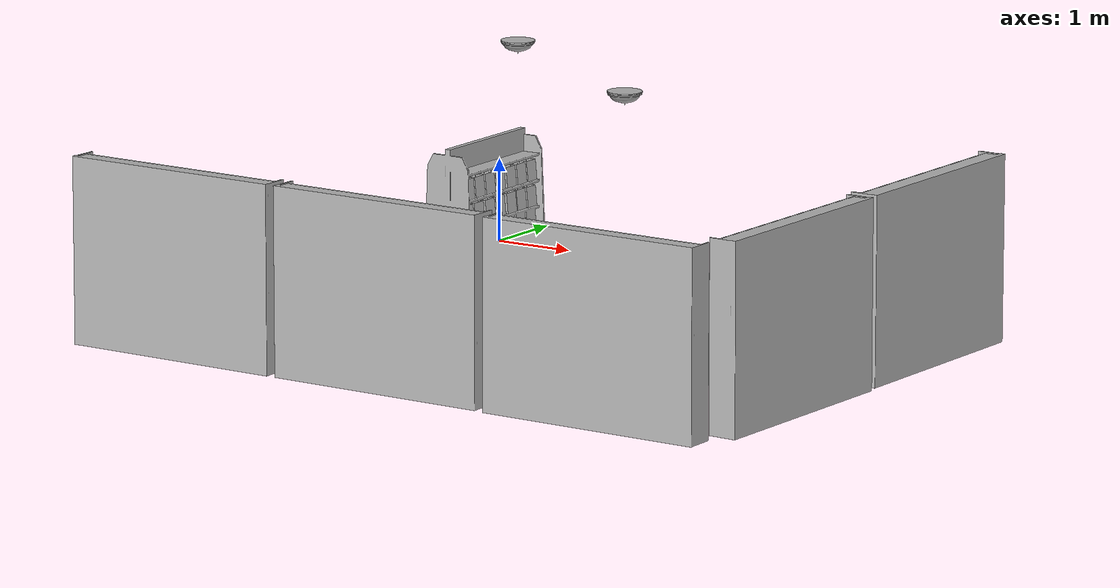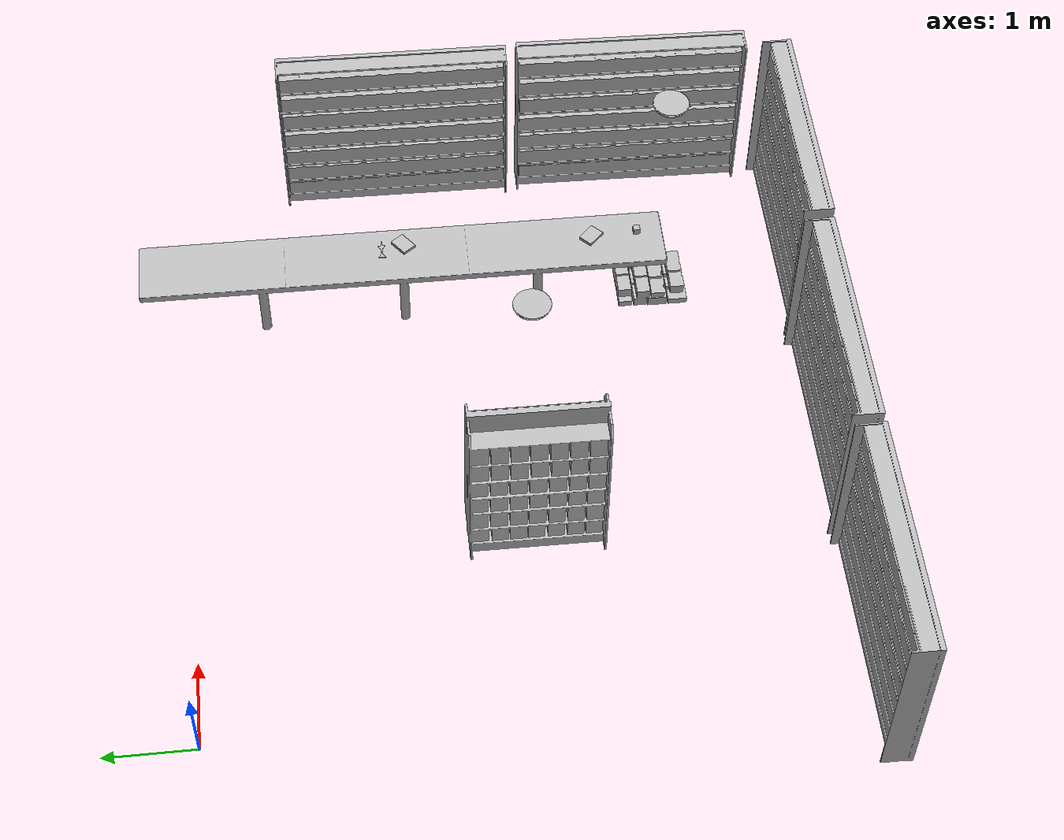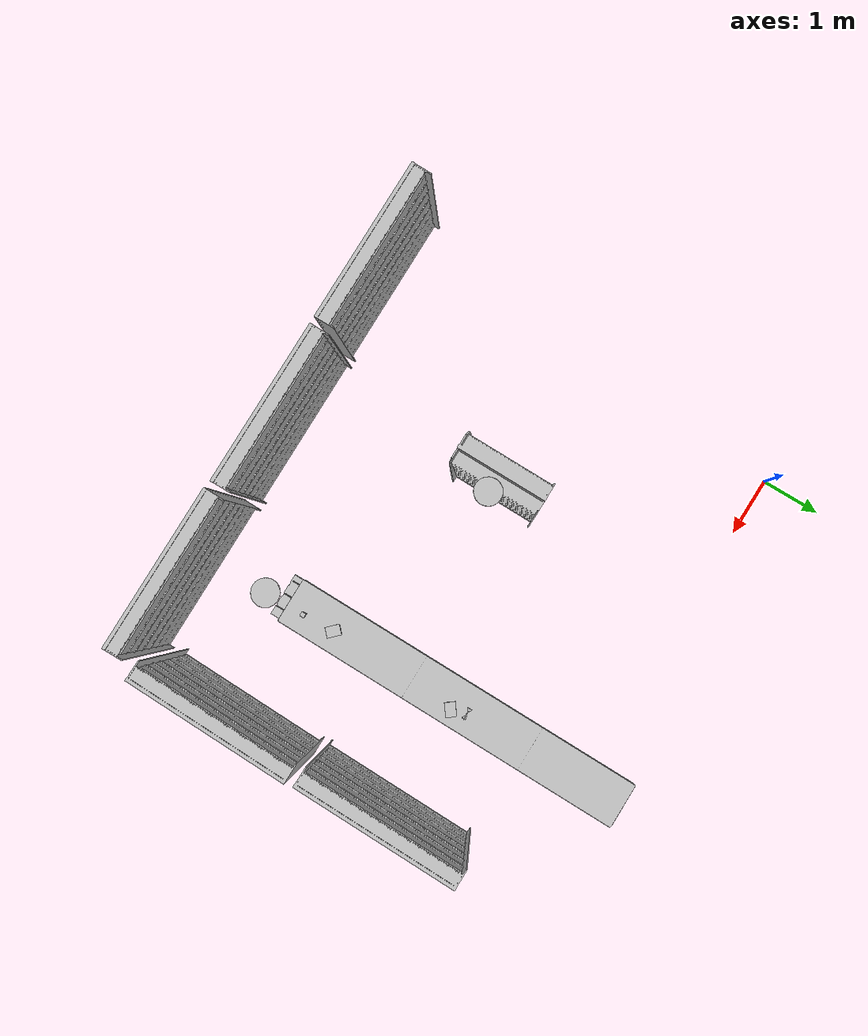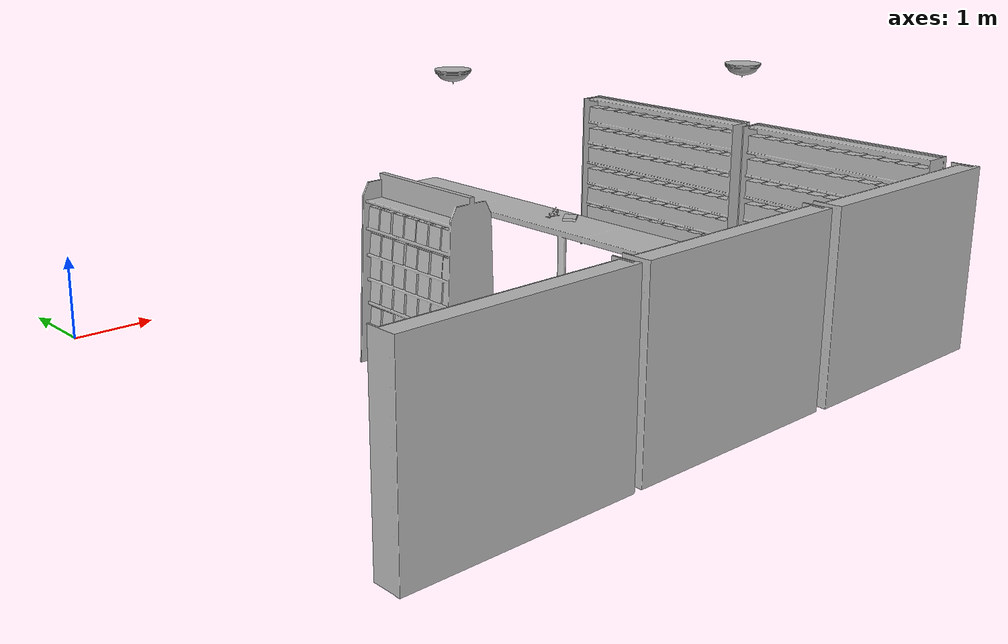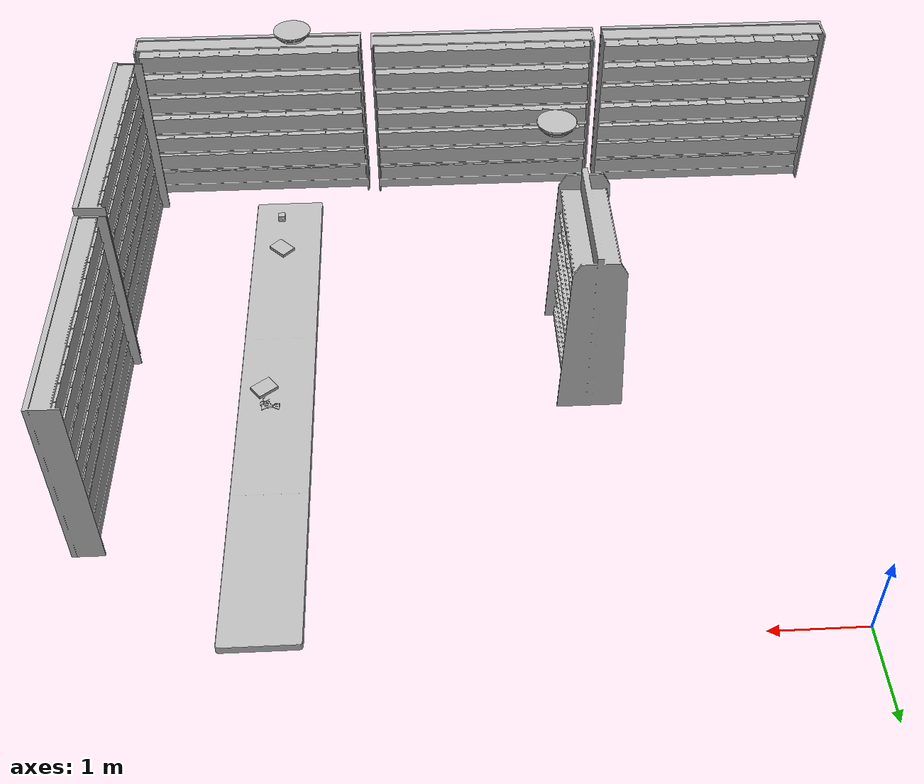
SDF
<sdf version="1.7">
 <world name="default">
  <model name="Bicycle_01_001">
   <pose>5.68125 -2.24245 0.931246 2e-06 -2.4e-05 -0</pose>
   <frame name="aws_robomaker_retail_Bicycle_01::__model__" attached_to="aws_robomaker_retail_Bicycle_01::link">
    <pose relative_to="__model__">0 0 0 0 -0 0</pose>
   </frame>
   <link name="aws_robomaker_retail_Bicycle_01::link">
    <inertial>
     <mass>0.04</mass>
     <inertia><ixx>0.1</ixx><ixy>0</ixy><ixz>0</ixz><iyy>0.1</iyy><iyz>0</iyz><izz>0.01</izz></inertia>
    </inertial>
    <collision name="collision">
     <geometry>
      <mesh>
       <uri>model://aws_robomaker_retail_Bicycle_01/meshes/aws_Bicycle_01_collision.DAE</uri>
       <scale>1 1 1</scale>
      </mesh>
     </geometry>
    </collision>
    <visual name="visual">
     <geometry>
      <mesh><uri>model://aws_robomaker_retail_Bicycle_01/meshes/aws_Bicycle_01_visual.DAE</uri></mesh>
     </geometry>
    </visual>
    <pose relative_to="aws_robomaker_retail_Bicycle_01::__model__">0 0 0 0 -0 0</pose>
   </link>
   <static>1</static>
  </model>
  <model name="BookE_01_004">
   <pose>5.67723 -4.6492 0.946394 0.0001 6e-06 -2.35575</pose>
   <frame name="aws_robomaker_retail_BookE_01::__model__" attached_to="aws_robomaker_retail_BookE_01::link">
    <pose relative_to="__model__">0 0 0 0 -0 0</pose>
   </frame>
   <link name="aws_robomaker_retail_BookE_01::link">
    <inertial>
     <mass>1</mass>
     <inertia><ixy>0</ixy><ixz>0</ixz><iyz>0</iyz><ixx>0.0666</ixx><iyy>0.0346</iyy><izz>0.0986</izz></inertia>
    </inertial>
    <collision name="collision">
     <geometry>
      <mesh>
       <uri>model://aws_robomaker_retail_BookE_01/meshes/aws_BookE_01_collision.DAE</uri>
       <scale>1 1 1</scale>
      </mesh>
     </geometry>
    </collision>
    <visual name="visual">
     <geometry>
      <mesh><uri>model://aws_robomaker_retail_BookE_01/meshes/aws_BookE_01_visual.DAE</uri></mesh>
     </geometry>
    </visual>
    <pose relative_to="aws_robomaker_retail_BookE_01::__model__">0 0 0 0 -0 0</pose>
   </link>
   <static>1</static>
  </model>
  <model name="BookE_01_011">
   <pose>5.74923 -2.49202 0.948933 2e-06 1e-06 2.22339</pose>
   <frame name="aws_robomaker_retail_BookE_01::__model__" attached_to="aws_robomaker_retail_BookE_01::link">
    <pose relative_to="__model__">0 0 0 0 -0 0</pose>
   </frame>
   <link name="aws_robomaker_retail_BookE_01::link">
    <inertial>
     <mass>1</mass>
     <inertia><ixy>0</ixy><ixz>0</ixz><iyz>0</iyz><ixx>0.0666</ixx><iyy>0.0346</iyy><izz>0.0986</izz></inertia>
    </inertial>
    <collision name="collision">
     <geometry>
      <mesh>
       <uri>model://aws_robomaker_retail_BookE_01/meshes/aws_BookE_01_collision.DAE</uri>
       <scale>1 1 1</scale>
      </mesh>
     </geometry>
    </collision>
    <visual name="visual">
     <geometry>
      <mesh><uri>model://aws_robomaker_retail_BookE_01/meshes/aws_BookE_01_visual.DAE</uri></mesh>
     </geometry>
    </visual>
    <pose relative_to="aws_robomaker_retail_BookE_01::__model__">0 0 0 0 -0 0</pose>
   </link>
   <static>1</static>
  </model>
  <model name="BookD_01_001">
   <pose>5.72005 -5.36588 0.022179 0.003452 -1e-06 0.000652</pose>
   <frame name="aws_robomaker_retail_BookD_01::__model__" attached_to="aws_robomaker_retail_BookD_01::link">
    <pose relative_to="__model__">0 0 0 0 -0 0</pose>
   </frame>
   <link name="aws_robomaker_retail_BookD_01::link">
    <inertial><mass>0.5</mass></inertial>
    <collision name="collision">
     <geometry>
      <mesh>
       <uri>model://aws_robomaker_retail_BookD_01/meshes/aws_BookD_01_collision.DAE</uri>
       <scale>1 1 1</scale>
      </mesh>
     </geometry>
    </collision>
    <visual name="visual">
     <geometry>
      <mesh><uri>model://aws_robomaker_retail_BookD_01/meshes/aws_BookD_01_visual.DAE</uri></mesh>
     </geometry>
    </visual>
    <pose relative_to="aws_robomaker_retail_BookD_01::__model__">0 0 0 0 -0 0</pose>
   </link>
   <static>1</static>
  </model>
  <model name="BookshelfA_01_001">
   <pose>2.35415 -3.65591 0.030529 0.00349 -3e-06 0.000696</pose>
   <frame name="aws_robomaker_retail_BookshelfA_01::__model__" attached_to="aws_robomaker_retail_BookshelfA_01::link">
    <pose relative_to="__model__">0 0 0 0 -0 0</pose>
   </frame>
   <link name="aws_robomaker_retail_BookshelfA_01::link">
    <inertial>
     <mass>50</mass>
     <inertia><ixx>27.7341</ixx><ixy>0</ixy><ixz>0</ixz><iyy>20.9361</iyy><iyz>0</iyz><izz>11.3596</izz></inertia>
    </inertial>
    <collision name="collision">
     <geometry>
      <mesh>
       <uri>model://aws_robomaker_retail_BookshelfA_01/meshes/aws_BookshelfA_01_collision.DAE</uri>
       <scale>1 1 1</scale>
      </mesh>
     </geometry>
    </collision>
    <visual name="visual">
     <geometry>
      <mesh><uri>model://aws_robomaker_retail_BookshelfA_01/meshes/aws_BookshelfA_01_visual.DAE</uri></mesh>
     </geometry>
    </visual>
    <pose relative_to="aws_robomaker_retail_BookshelfA_01::__model__">0 0 0 0 -0 0</pose>
   </link>
   <static>1</static>
  </model>
  <model name="BookshelfB_01_003">
   <pose>0.522246 -6.9715 0.017947 -0.003292 0 0</pose>
   <frame name="aws_robomaker_retail_BookshelfB_01::__model__" attached_to="aws_robomaker_retail_BookshelfB_01::link">
    <pose relative_to="__model__">0 0 0 0 -0 0</pose>
   </frame>
   <link name="aws_robomaker_retail_BookshelfB_01::link">
    <inertial>
     <mass>50</mass>
     <inertia><ixx>19.8742</ixx><ixy>0</ixy><ixz>0</ixz><iyy>49.1263</iyy><iyz>0</iyz><izz>30.2231</izz></inertia>
    </inertial>
    <collision name="collision">
     <geometry>
      <mesh>
       <uri>model://aws_robomaker_retail_BookshelfB_01/meshes/aws_BookshelfB_01_collision.DAE</uri>
       <scale>1 1 1</scale>
      </mesh>
     </geometry>
    </collision>
    <visual name="visual">
     <geometry>
      <mesh><uri>model://aws_robomaker_retail_BookshelfB_01/meshes/aws_BookshelfB_01_visual.DAE</uri></mesh>
     </geometry>
    </visual>
    <pose relative_to="aws_robomaker_retail_BookshelfB_01::__model__">0 0 0 0 -0 0</pose>
   </link>
   <static>1</static>
  </model>
  <model name="BookshelfB_01_004">
   <pose>3.29339 -6.96366 0.017383 8e-06 -2e-06 -0</pose>
   <frame name="aws_robomaker_retail_BookshelfB_01::__model__" attached_to="aws_robomaker_retail_BookshelfB_01::link">
    <pose relative_to="__model__">0 0 0 0 -0 0</pose>
   </frame>
   <link name="aws_robomaker_retail_BookshelfB_01::link">
    <inertial>
     <mass>50</mass>
     <inertia><ixx>19.8742</ixx><ixy>0</ixy><ixz>0</ixz><iyy>49.1263</iyy><iyz>0</iyz><izz>30.2231</izz></inertia>
    </inertial>
    <collision name="collision">
     <geometry>
      <mesh>
       <uri>model://aws_robomaker_retail_BookshelfB_01/meshes/aws_BookshelfB_01_collision.DAE</uri>
       <scale>1 1 1</scale>
      </mesh>
     </geometry>
    </collision>
    <visual name="visual">
     <geometry>
      <mesh><uri>model://aws_robomaker_retail_BookshelfB_01/meshes/aws_BookshelfB_01_visual.DAE</uri></mesh>
     </geometry>
    </visual>
    <pose relative_to="aws_robomaker_retail_BookshelfB_01::__model__">0 0 0 0 -0 0</pose>
   </link>
   <static>1</static>
  </model>
  <model name="BookshelfB_01_005">
   <pose>6.08038 -6.98766 0.017409 0.000174 4e-06 0</pose>
   <frame name="aws_robomaker_retail_BookshelfB_01::__model__" attached_to="aws_robomaker_retail_BookshelfB_01::link">
    <pose relative_to="__model__">0 0 0 0 -0 0</pose>
   </frame>
   <link name="aws_robomaker_retail_BookshelfB_01::link">
    <inertial>
     <mass>50</mass>
     <inertia><ixx>19.8742</ixx><ixy>0</ixy><ixz>0</ixz><iyy>49.1263</iyy><iyz>0</iyz><izz>30.2231</izz></inertia>
    </inertial>
    <collision name="collision">
     <geometry>
      <mesh>
       <uri>model://aws_robomaker_retail_BookshelfB_01/meshes/aws_BookshelfB_01_collision.DAE</uri>
       <scale>1 1 1</scale>
      </mesh>
     </geometry>
    </collision>
    <visual name="visual">
     <geometry>
      <mesh><uri>model://aws_robomaker_retail_BookshelfB_01/meshes/aws_BookshelfB_01_visual.DAE</uri></mesh>
     </geometry>
    </visual>
    <pose relative_to="aws_robomaker_retail_BookshelfB_01::__model__">0 0 0 0 -0 0</pose>
   </link>
   <static>1</static>
  </model>
  <model name="BookshelfB_01_006">
   <pose>7.47833 -5.2983 0.017443 -0.001974 -0.000211 1.55406</pose>
   <frame name="aws_robomaker_retail_BookshelfB_01::__model__" attached_to="aws_robomaker_retail_BookshelfB_01::link">
    <pose relative_to="__model__">0 0 0 0 -0 0</pose>
   </frame>
   <link name="aws_robomaker_retail_BookshelfB_01::link">
    <inertial>
     <mass>50</mass>
     <inertia><ixx>19.8742</ixx><ixy>0</ixy><ixz>0</ixz><iyy>49.1263</iyy><iyz>0</iyz><izz>30.2231</izz></inertia>
    </inertial>
    <collision name="collision">
     <geometry>
      <mesh>
       <uri>model://aws_robomaker_retail_BookshelfB_01/meshes/aws_BookshelfB_01_collision.DAE</uri>
       <scale>1 1 1</scale>
      </mesh>
     </geometry>
    </collision>
    <visual name="visual">
     <geometry>
      <mesh><uri>model://aws_robomaker_retail_BookshelfB_01/meshes/aws_BookshelfB_01_visual.DAE</uri></mesh>
     </geometry>
    </visual>
    <pose relative_to="aws_robomaker_retail_BookshelfB_01::__model__">0 0 0 0 -0 0</pose>
   </link>
   <static>1</static>
  </model>
  <model name="BookshelfB_01_007">
   <pose>7.47833 -2.51065 0.017402 1e-05 -1.3e-05 1.56207</pose>
   <frame name="aws_robomaker_retail_BookshelfB_01::__model__" attached_to="aws_robomaker_retail_BookshelfB_01::link">
    <pose relative_to="__model__">0 0 0 0 -0 0</pose>
   </frame>
   <link name="aws_robomaker_retail_BookshelfB_01::link">
    <inertial>
     <mass>50</mass>
     <inertia><ixx>19.8742</ixx><ixy>0</ixy><ixz>0</ixz><iyy>49.1263</iyy><iyz>0</iyz><izz>30.2231</izz></inertia>
    </inertial>
    <collision name="collision">
     <geometry>
      <mesh>
       <uri>model://aws_robomaker_retail_BookshelfB_01/meshes/aws_BookshelfB_01_collision.DAE</uri>
       <scale>1 1 1</scale>
      </mesh>
     </geometry>
    </collision>
    <visual name="visual">
     <geometry>
      <mesh><uri>model://aws_robomaker_retail_BookshelfB_01/meshes/aws_BookshelfB_01_visual.DAE</uri></mesh>
     </geometry>
    </visual>
    <pose relative_to="aws_robomaker_retail_BookshelfB_01::__model__">0 0 0 0 -0 0</pose>
   </link>
   <static>1</static>
  </model>
  <model name="DeskB_01_001">
   <pose>5.62294 -2.47542 -0.181282 0 -0 0</pose>
   <frame name="aws_robomaker_retail_DeskB_01::__model__" attached_to="aws_robomaker_retail_DeskB_01::link">
    <pose relative_to="__model__">0 0 0 0 -0 0</pose>
   </frame>
   <link name="aws_robomaker_retail_DeskB_01::link">
    <inertial>
     <mass>50</mass>
     <inertia><ixx>154.884</ixx><ixy>0</ixy><ixz>0</ixz><iyy>7.48424</iyy><iyz>0</iyz><izz>152.099</izz></inertia>
    </inertial>
    <collision name="collision">
     <geometry>
      <mesh>
       <uri>model://aws_robomaker_retail_DeskB_01/meshes/aws_DeskB_01_collision.DAE</uri>
       <scale>1 1 1</scale>
      </mesh>
     </geometry>
    </collision>
    <visual name="visual">
     <geometry>
      <mesh><uri>model://aws_robomaker_retail_DeskB_01/meshes/aws_DeskB_01_visual.DAE</uri></mesh>
     </geometry>
    </visual>
    <pose relative_to="aws_robomaker_retail_DeskB_01::__model__">0 0 0 0 -0 0</pose>
   </link>
   <static>1</static>
  </model>
  <model name="LightA_01_001">
   <pose>2.77442 -3.62815 3.15033 0 -0 0</pose>
   <frame name="aws_robomaker_retail_LightA_01::__model__" attached_to="aws_robomaker_retail_LightA_01::link">
    <pose relative_to="__model__">0 0 0 0 -0 0</pose>
   </frame>
   <link name="aws_robomaker_retail_LightA_01::link">
    <inertial><mass>1</mass></inertial>
    <collision name="collision">
     <geometry>
      <mesh>
       <uri>model://aws_robomaker_retail_LightA_01/meshes/aws_LightA_01_collision.DAE</uri>
       <scale>1 1 1</scale>
      </mesh>
     </geometry>
    </collision>
    <visual name="visual">
     <geometry>
      <mesh><uri>model://aws_robomaker_retail_LightA_01/meshes/aws_LightA_01_visual.DAE</uri></mesh>
     </geometry>
    </visual>
    <pose relative_to="aws_robomaker_retail_LightA_01::__model__">0 0 0 0 -0 0</pose>
   </link>
   <static>1</static>
  </model>
  <model name="LightA_01_002">
   <pose>5.38399 -5.38371 3.15033 0 -0 0</pose>
   <frame name="aws_robomaker_retail_LightA_01::__model__" attached_to="aws_robomaker_retail_LightA_01::link">
    <pose relative_to="__model__">0 0 0 0 -0 0</pose>
   </frame>
   <link name="aws_robomaker_retail_LightA_01::link">
    <inertial><mass>1</mass></inertial>
    <collision name="collision">
     <geometry>
      <mesh>
       <uri>model://aws_robomaker_retail_LightA_01/meshes/aws_LightA_01_collision.DAE</uri>
       <scale>1 1 1</scale>
      </mesh>
     </geometry>
    </collision>
    <visual name="visual">
     <geometry>
      <mesh><uri>model://aws_robomaker_retail_LightA_01/meshes/aws_LightA_01_visual.DAE</uri></mesh>
     </geometry>
    </visual>
    <pose relative_to="aws_robomaker_retail_LightA_01::__model__">0 0 0 0 -0 0</pose>
   </link>
   <static>1</static>
  </model>
  <model name="MagicCube_01_001">
   <pose>5.70452 -5.17433 0.928725 -0 -0 -1.55541</pose>
   <frame name="aws_robomaker_retail_MagicCube_01::__model__" attached_to="aws_robomaker_retail_MagicCube_01::link">
    <pose relative_to="__model__">0 0 0 0 -0 0</pose>
   </frame>
   <link name="aws_robomaker_retail_MagicCube_01::link">
    <inertial>
     <mass>0.2</mass>
     <inertia><ixx>0.01</ixx><ixy>0</ixy><ixz>0</ixz><iyy>0.01</iyy><iyz>0</iyz><izz>0.01</izz></inertia>
    </inertial>
    <collision name="collision">
     <geometry>
      <mesh>
       <uri>model://aws_robomaker_retail_MagicCube_01/meshes/aws_MagicCube_01_collision.DAE</uri>
       <scale>1 1 1</scale>
      </mesh>
     </geometry>
    </collision>
    <visual name="visual">
     <geometry>
      <mesh><uri>model://aws_robomaker_retail_MagicCube_01/meshes/aws_MagicCube_01_visual.DAE</uri></mesh>
     </geometry>
    </visual>
    <pose relative_to="aws_robomaker_retail_MagicCube_01::__model__">0 0 0 0 -0 0</pose>
   </link>
  </model>
 </world>
</sdf>
